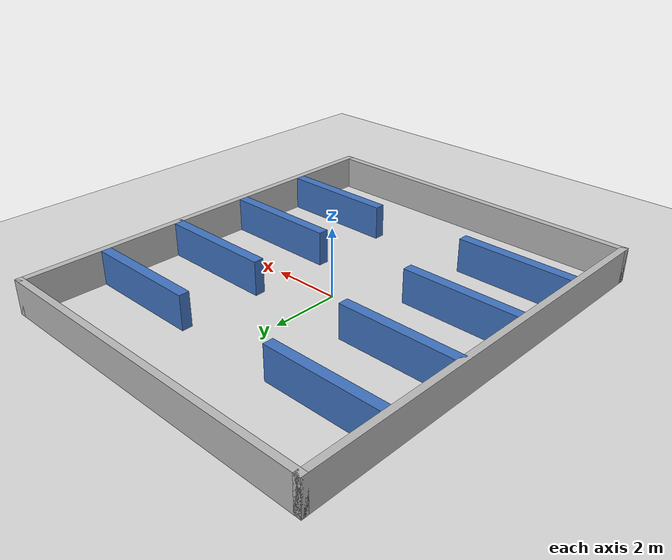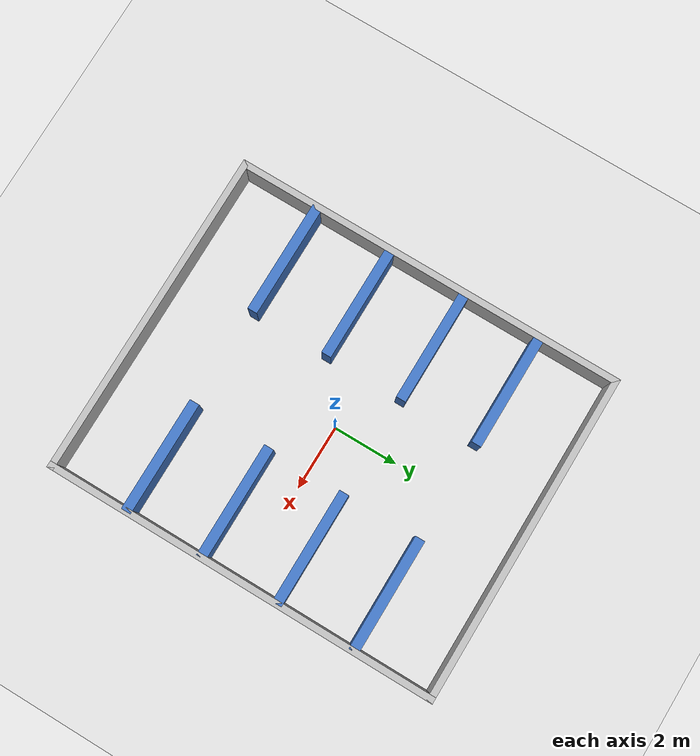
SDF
<?xml version="1.0"?>
<sdf version="1.8">
  <world name="simple_maze">
    <physics name="1ms" type="ignored">
      <max_step_size>0.001</max_step_size>
      <real_time_factor>1.0</real_time_factor>
    </physics>
    <plugin filename="ignition-gazebo-physics-system" name="ignition::gazebo::systems::Physics"/>
    <plugin filename="ignition-gazebo-user-commands-system" name="ignition::gazebo::systems::UserCommands"/>
    <plugin filename="ignition-gazebo-scene-broadcaster-system" name="ignition::gazebo::systems::SceneBroadcaster"/>
    <gravity>0 0 -9.8</gravity>

    <light type="directional" name="sun">
      <pose>0 0 10 0 0 0</pose>
      <direction>-0.5 0.1 -0.9</direction>
    </light>

    <model name="ground_plane">
      <static>true</static>
      <link name="link">
        <collision name="collision">
          <geometry><plane><normal>0 0 1</normal><size>20 20</size></plane></geometry>
        </collision>
        <visual name="visual">
          <geometry><plane><normal>0 0 1</normal><size>20 20</size></plane></geometry>
          <material><ambient>0.85 0.85 0.85 1</ambient><diffuse>0.85 0.85 0.85 1</diffuse></material>
        </visual>
      </link>
    </model>

    <!-- The enclosed field is 10 m wide (X) by 12 m long (Y). -->
    <model name="boundary_north"><static>true</static><pose>0 6 0.5 0 0 0</pose><link name="link"><collision name="collision"><geometry><box><size>10.2 0.2 1.0</size></box></geometry></collision><visual name="visual"><geometry><box><size>10.2 0.2 1.0</size></box></geometry></visual></link></model>
    <model name="boundary_south"><static>true</static><pose>0 -6 0.5 0 0 0</pose><link name="link"><collision name="collision"><geometry><box><size>10.2 0.2 1.0</size></box></geometry></collision><visual name="visual"><geometry><box><size>10.2 0.2 1.0</size></box></geometry></visual></link></model>
    <model name="boundary_east"><static>true</static><pose>5 0 0.5 0 0 0</pose><link name="link"><collision name="collision"><geometry><box><size>0.2 12.2 1.0</size></box></geometry></collision><visual name="visual"><geometry><box><size>0.2 12.2 1.0</size></box></geometry></visual></link></model>
    <model name="boundary_west"><static>true</static><pose>-5 0 0.5 0 0 0</pose><link name="link"><collision name="collision"><geometry><box><size>0.2 12.2 1.0</size></box></geometry></collision><visual name="visual"><geometry><box><size>0.2 12.2 1.0</size></box></geometry></visual></link></model>

    <!-- Eight 3.5 x 0.3 x 1.0 m partitions. Their inner faces leave a 3 m central aisle. -->
    <model name="partition_l1"><static>true</static><pose>-3.25 -3.6 0.5 0 0 0</pose><link name="link"><collision name="collision"><geometry><box><size>3.5 0.3 1.0</size></box></geometry></collision><visual name="visual"><geometry><box><size>3.5 0.3 1.0</size></box></geometry><material><ambient>0.25 0.45 0.75 1</ambient><diffuse>0.25 0.45 0.75 1</diffuse></material></visual></link></model>
    <model name="partition_r1"><static>true</static><pose>3.25 -3.6 0.5 0 0 0</pose><link name="link"><collision name="collision"><geometry><box><size>3.5 0.3 1.0</size></box></geometry></collision><visual name="visual"><geometry><box><size>3.5 0.3 1.0</size></box></geometry><material><ambient>0.25 0.45 0.75 1</ambient><diffuse>0.25 0.45 0.75 1</diffuse></material></visual></link></model>
    <model name="partition_l2"><static>true</static><pose>-3.25 -1.2 0.5 0 0 0</pose><link name="link"><collision name="collision"><geometry><box><size>3.5 0.3 1.0</size></box></geometry></collision><visual name="visual"><geometry><box><size>3.5 0.3 1.0</size></box></geometry><material><ambient>0.25 0.45 0.75 1</ambient><diffuse>0.25 0.45 0.75 1</diffuse></material></visual></link></model>
    <model name="partition_r2"><static>true</static><pose>3.25 -1.2 0.5 0 0 0</pose><link name="link"><collision name="collision"><geometry><box><size>3.5 0.3 1.0</size></box></geometry></collision><visual name="visual"><geometry><box><size>3.5 0.3 1.0</size></box></geometry><material><ambient>0.25 0.45 0.75 1</ambient><diffuse>0.25 0.45 0.75 1</diffuse></material></visual></link></model>
    <model name="partition_l3"><static>true</static><pose>-3.25 1.2 0.5 0 0 0</pose><link name="link"><collision name="collision"><geometry><box><size>3.5 0.3 1.0</size></box></geometry></collision><visual name="visual"><geometry><box><size>3.5 0.3 1.0</size></box></geometry><material><ambient>0.25 0.45 0.75 1</ambient><diffuse>0.25 0.45 0.75 1</diffuse></material></visual></link></model>
    <model name="partition_r3"><static>true</static><pose>3.25 1.2 0.5 0 0 0</pose><link name="link"><collision name="collision"><geometry><box><size>3.5 0.3 1.0</size></box></geometry></collision><visual name="visual"><geometry><box><size>3.5 0.3 1.0</size></box></geometry><material><ambient>0.25 0.45 0.75 1</ambient><diffuse>0.25 0.45 0.75 1</diffuse></material></visual></link></model>
    <model name="partition_l4"><static>true</static><pose>-3.25 3.6 0.5 0 0 0</pose><link name="link"><collision name="collision"><geometry><box><size>3.5 0.3 1.0</size></box></geometry></collision><visual name="visual"><geometry><box><size>3.5 0.3 1.0</size></box></geometry><material><ambient>0.25 0.45 0.75 1</ambient><diffuse>0.25 0.45 0.75 1</diffuse></material></visual></link></model>
    <model name="partition_r4"><static>true</static><pose>3.25 3.6 0.5 0 0 0</pose><link name="link"><collision name="collision"><geometry><box><size>3.5 0.3 1.0</size></box></geometry></collision><visual name="visual"><geometry><box><size>3.5 0.3 1.0</size></box></geometry><material><ambient>0.25 0.45 0.75 1</ambient><diffuse>0.25 0.45 0.75 1</diffuse></material></visual></link></model>
  </world>
</sdf>
